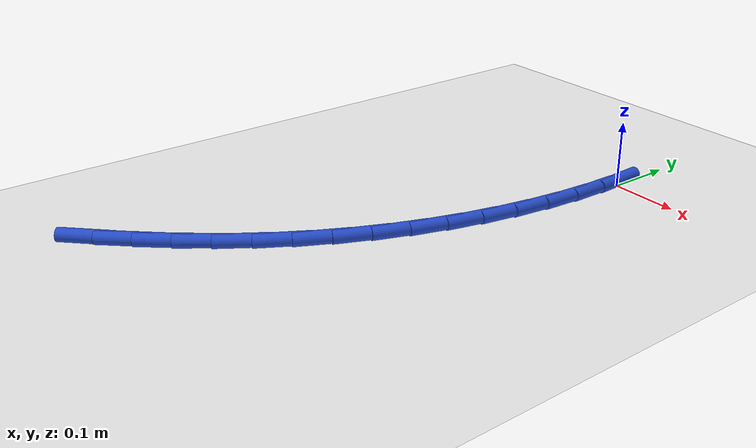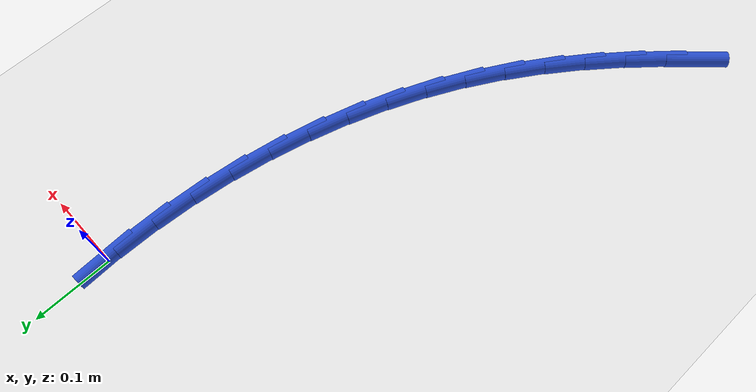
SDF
<sdf version="1.6">
 <world name="default">
  <model name="ground_plane">
   <static>1</static>
   <link name="link">
    <collision name="collision">
     <geometry><plane><normal>0 0 1</normal><size>100 100</size></plane></geometry>
     <surface><friction><ode><mu>100</mu><mu2>50</mu2></ode></friction></surface>
    </collision>
    <visual name="visual">
     <cast_shadows>0</cast_shadows>
     <geometry><plane><normal>0 0 1</normal><size>100 100</size></plane></geometry>
     <material>
      <script><uri>file://media/materials/scripts/gazebo.material</uri><name>Gazebo/WhiteGlow</name></script>
     </material>
    </visual>
   </link>
  </model>
  <model name="line">
   <link name="link_115">
    <pose>-0.2992631849851613 -0.7048282197519886 0.01 0 1.57 0.8034437053181689</pose>
    <collision name="collision">
     <geometry><cylinder><radius>0.01</radius><length>0.08</length></cylinder></geometry>
    </collision>
    <visual name="visual">
     <material>
      <script><name>Gazebo/Blue</name><uri>file://media/materials/scripts/gazebo.material</uri></script>
     </material>
     <geometry><cylinder><radius>0.01</radius><length>0.08</length></cylinder></geometry>
    </visual>
   </link>
   <link name="link_116">
    <pose>-0.2627992320311591 -0.6670239102595293 0.01 0 1.57 0.8448073167386121</pose>
    <collision name="collision">
     <geometry><cylinder><radius>0.01</radius><length>0.08</length></cylinder></geometry>
    </collision>
    <visual name="visual">
     <material>
      <script><name>Gazebo/Blue</name><uri>file://media/materials/scripts/gazebo.material</uri></script>
     </material>
     <geometry><cylinder><radius>0.01</radius><length>0.08</length></cylinder></geometry>
    </visual>
   </link>
   <link name="link_117">
    <pose>-0.22800098525061427 -0.6278243362963027 0.01 0 1.57 0.8901485846978946</pose>
    <collision name="collision">
     <geometry><cylinder><radius>0.01</radius><length>0.08</length></cylinder></geometry>
    </collision>
    <visual name="visual">
     <material>
      <script><name>Gazebo/Blue</name><uri>file://media/materials/scripts/gazebo.material</uri></script>
     </material>
     <geometry><cylinder><radius>0.01</radius><length>0.08</length></cylinder></geometry>
    </visual>
   </link>
   <link name="link_118">
    <pose>-0.19508628464199076 -0.5871755173846733 0.01 0 1.57 0.9395638930295367</pose>
    <collision name="collision">
     <geometry><cylinder><radius>0.01</radius><length>0.08</length></cylinder></geometry>
    </collision>
    <visual name="visual">
     <material>
      <script><name>Gazebo/Blue</name><uri>file://media/materials/scripts/gazebo.material</uri></script>
     </material>
     <geometry><cylinder><radius>0.01</radius><length>0.08</length></cylinder></geometry>
    </visual>
   </link>
   <link name="link_119">
    <pose>-0.16427297020375387 -0.5450234730470083 0.01 0 1.57 0.9930861388405002</pose>
    <collision name="collision">
     <geometry><cylinder><radius>0.01</radius><length>0.08</length></cylinder></geometry>
    </collision>
    <visual name="visual">
     <material>
      <script><name>Gazebo/Blue</name><uri>file://media/materials/scripts/gazebo.material</uri></script>
     </material>
     <geometry><cylinder><radius>0.01</radius><length>0.08</length></cylinder></geometry>
    </visual>
   </link>
   <link name="link_120">
    <pose>-0.13577888193436752 -0.5013142228056725 0.01 0 1.57 1.0506522648923826</pose>
    <collision name="collision">
     <geometry><cylinder><radius>0.01</radius><length>0.08</length></cylinder></geometry>
    </collision>
    <visual name="visual">
     <material>
      <script><name>Gazebo/Blue</name><uri>file://media/materials/scripts/gazebo.material</uri></script>
     </material>
     <geometry><cylinder><radius>0.01</radius><length>0.08</length></cylinder></geometry>
    </visual>
   </link>
   <link name="link_121">
    <pose>-0.10982162786134661 -0.4559940796721838 0.01 0 1.57 1.1105274797494418</pose>
    <collision name="collision">
     <geometry><cylinder><radius>0.01</radius><length>0.08</length></cylinder></geometry>
    </collision>
    <visual name="visual">
     <material>
      <script><name>Gazebo/Blue</name><uri>file://media/materials/scripts/gazebo.material</uri></script>
     </material>
     <geometry><cylinder><radius>0.01</radius><length>0.08</length></cylinder></geometry>
    </visual>
   </link>
   <link name="link_122">
    <pose>-0.08656261996181865 -0.40908045578151275 0.01 0 1.57 1.1691076211182354</pose>
    <collision name="collision">
     <geometry><cylinder><radius>0.01</radius><length>0.08</length></cylinder></geometry>
    </collision>
    <visual name="visual">
     <material>
      <script><name>Gazebo/Blue</name><uri>file://media/materials/scripts/gazebo.material</uri></script>
     </material>
     <geometry><cylinder><radius>0.01</radius><length>0.08</length></cylinder></geometry>
    </visual>
   </link>
   <link name="link_123">
    <pose>-0.06603425386853604 -0.36075399447318834 0.01 0 1.57 1.226126347462337</pose>
    <collision name="collision">
     <geometry><cylinder><radius>0.01</radius><length>0.08</length></cylinder></geometry>
    </collision>
    <visual name="visual">
     <material>
      <script><name>Gazebo/Blue</name><uri>file://media/materials/scripts/gazebo.material</uri></script>
     </material>
     <geometry><cylinder><radius>0.01</radius><length>0.08</length></cylinder></geometry>
    </visual>
   </link>
   <link name="link_124">
    <pose>-0.04825089075066078 -0.31121815625172794 0.01 0 1.57 1.2818559674613041</pose>
    <collision name="collision">
     <geometry><cylinder><radius>0.01</radius><length>0.08</length></cylinder></geometry>
    </collision>
    <visual name="visual">
     <material>
      <script><name>Gazebo/Blue</name><uri>file://media/materials/scripts/gazebo.material</uri></script>
     </material>
     <geometry><cylinder><radius>0.01</radius><length>0.08</length></cylinder></geometry>
    </visual>
   </link>
   <link name="link_125">
    <pose>-0.03322689177735409 -0.2606764016216472 0.01 0 1.57 1.336583901850006</pose>
    <collision name="collision">
     <geometry><cylinder><radius>0.01</radius><length>0.08</length></cylinder></geometry>
    </collision>
    <visual name="visual">
     <material>
      <script><name>Gazebo/Blue</name><uri>file://media/materials/scripts/gazebo.material</uri></script>
     </material>
     <geometry><cylinder><radius>0.01</radius><length>0.08</length></cylinder></geometry>
    </visual>
   </link>
   <link name="link_126">
    <pose>-0.020976618117777242 -0.20933219108746126 0.01 0 1.57 1.3906080020163656</pose>
    <collision name="collision">
     <geometry><cylinder><radius>0.01</radius><length>0.08</length></cylinder></geometry>
    </collision>
    <visual name="visual">
     <material>
      <script><name>Gazebo/Blue</name><uri>file://media/materials/scripts/gazebo.material</uri></script>
     </material>
     <geometry><cylinder><radius>0.01</radius><length>0.08</length></cylinder></geometry>
    </visual>
   </link>
   <link name="link_127">
    <pose>-0.011514430941092063 -0.1573889851536879 0.01 0 1.57 1.4442334318809187</pose>
    <collision name="collision">
     <geometry><cylinder><radius>0.01</radius><length>0.08</length></cylinder></geometry>
    </collision>
    <visual name="visual">
     <material>
      <script><name>Gazebo/Blue</name><uri>file://media/materials/scripts/gazebo.material</uri></script>
     </material>
     <geometry><cylinder><radius>0.01</radius><length>0.08</length></cylinder></geometry>
    </visual>
   </link>
   <link name="link_128">
    <pose>-0.004854691416459811 -0.10505024432484249 0.01 0 1.57 1.4977706725591284</pose>
    <collision name="collision">
     <geometry><cylinder><radius>0.01</radius><length>0.08</length></cylinder></geometry>
    </collision>
    <visual name="visual">
     <material>
      <script><name>Gazebo/Blue</name><uri>file://media/materials/scripts/gazebo.material</uri></script>
     </material>
     <geometry><cylinder><radius>0.01</radius><length>0.08</length></cylinder></geometry>
    </visual>
   </link>
   <link name="link_129">
    <pose>-0.0010117607130419506 -0.052519429105441155 0.01 0 1.57 1.5515342061621251</pose>
    <collision name="collision">
     <geometry><cylinder><radius>0.01</radius><length>0.08</length></cylinder></geometry>
    </collision>
    <visual name="visual">
     <material>
      <script><name>Gazebo/Blue</name><uri>file://media/materials/scripts/gazebo.material</uri></script>
     </material>
     <geometry><cylinder><radius>0.01</radius><length>0.08</length></cylinder></geometry>
    </visual>
   </link>
   <link name="link_130">
    <pose>4.163336342344337e-17 0.0 0.01 0 1.57 -1.5357512202859394</pose>
    <collision name="collision">
     <geometry><cylinder><radius>0.01</radius><length>0.08</length></cylinder></geometry>
    </collision>
    <visual name="visual">
     <material>
      <script><name>Gazebo/Blue</name><uri>file://media/materials/scripts/gazebo.material</uri></script>
     </material>
     <geometry><cylinder><radius>0.01</radius><length>0.08</length></cylinder></geometry>
    </visual>
   </link>
  </model>
 </world>
</sdf>
